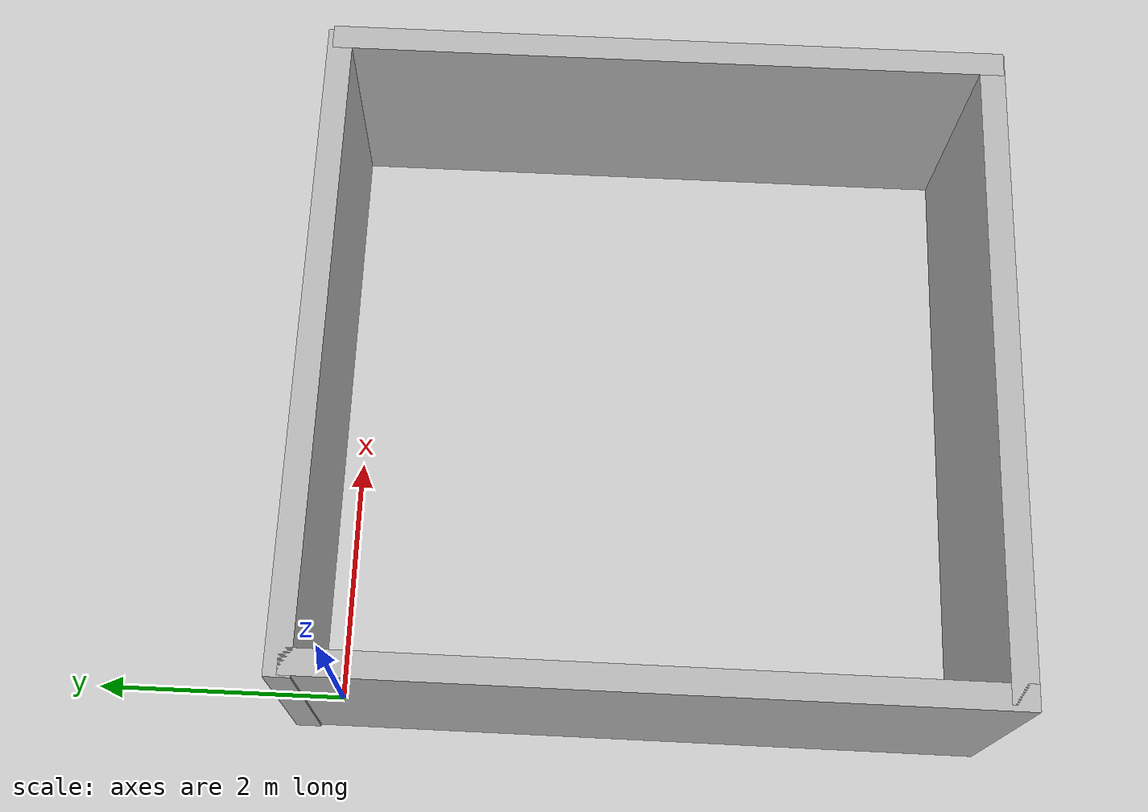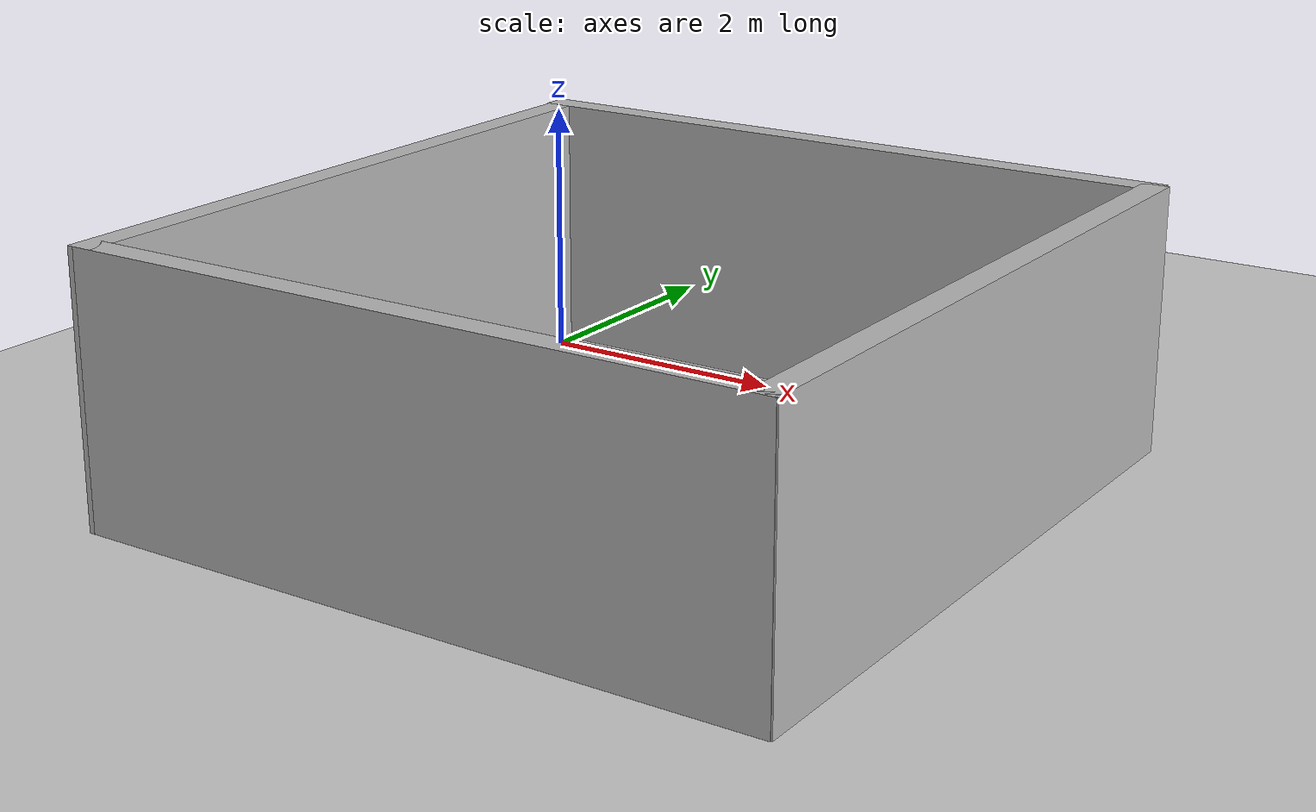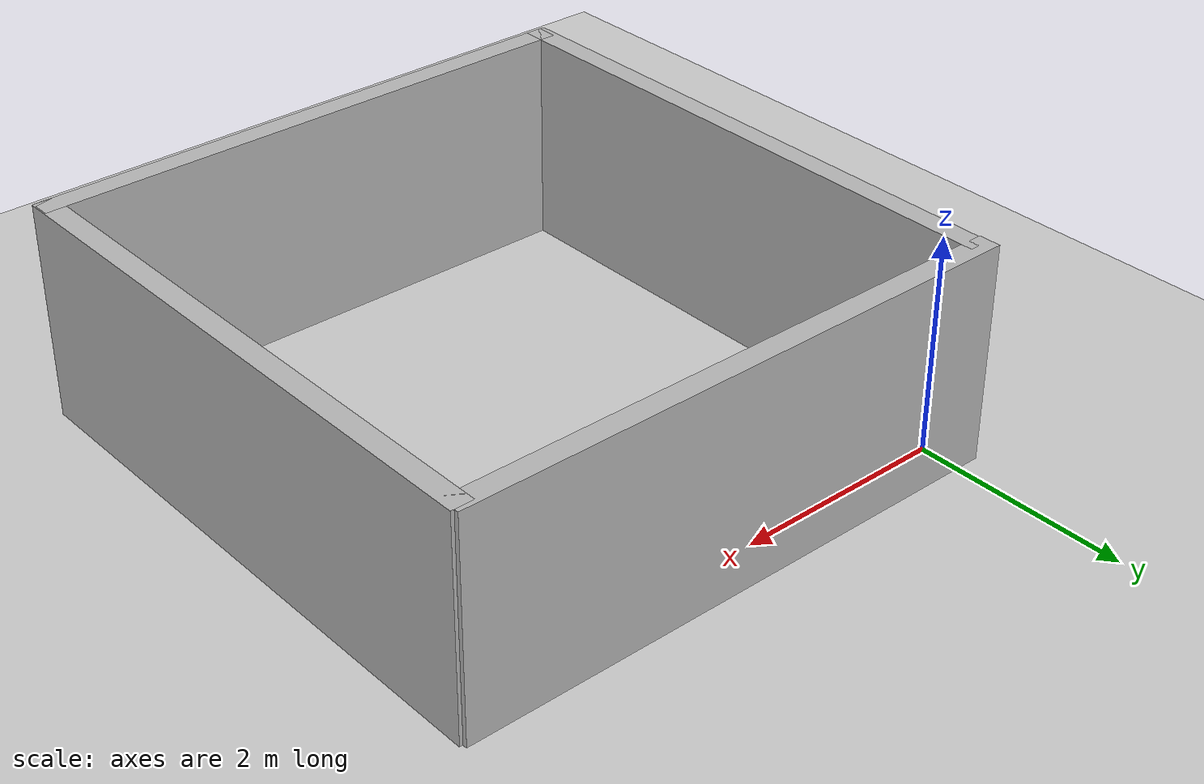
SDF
<sdf version="1.6">
 <world name="default">
  <physics name="default_physics" default="0" type="ode">
   <ode>
    <solver>
     <type>quick</type>
     <iters>20</iters>
     <sor>1</sor>
     <use_dynamic_moi_rescaling>0</use_dynamic_moi_rescaling>
    </solver>
    <constraints>
     <cfm>0</cfm>
     <erp>0.2</erp>
     <contact_max_correcting_vel>100</contact_max_correcting_vel>
     <contact_surface_layer>0</contact_surface_layer>
    </constraints>
   </ode>
   <real_time_update_rate>1000</real_time_update_rate>
   <max_step_size>0.001</max_step_size>
   <real_time_factor>1</real_time_factor>
  </physics>
  <light name="sun" type="directional">
   <pose>0 0 10 0 -0 0</pose>
   <diffuse>0.8 0.8 0.8 1</diffuse>
   <specular>0.2 0.2 0.2 1</specular>
   <attenuation>
    <range>1000</range>
    <constant>0.9</constant>
    <linear>0.01</linear>
    <quadratic>0.001</quadratic>
   </attenuation>
   <direction>-0.5 0.1 -0.9</direction>
  </light>
  <model name="ground_plane">
   <static>1</static>
   <link name="link">
    <collision name="collision">
     <geometry><plane><normal>0 0 1</normal><size>100 100</size></plane></geometry>
     <surface>
      <contact><collide_bitmask>65535</collide_bitmask></contact>
      <friction><ode><mu>100</mu><mu2>50</mu2></ode></friction>
     </surface>
    </collision>
    <visual name="visual">
     <cast_shadows>0</cast_shadows>
     <geometry><plane><normal>0 0 1</normal><size>100 100</size></plane></geometry>
     <material>
      <script><uri>file://media/materials/scripts/gazebo.material</uri><name>Gazebo/Grey</name></script>
     </material>
    </visual>
   </link>
  </model>
  <model name="wall_1_model">
   <pose>2.45815 -5 1 0 -0 0</pose>
   <static>1</static>
   <link name="wall_1_body">
    <inertial>
     <mass>1</mass>
     <inertia><ixx>1</ixx><ixy>0</ixy><ixz>0</ixz><iyy>1</iyy><iyz>0</iyz><izz>1</izz></inertia>
    </inertial>
    <collision name="collision"><geometry><box><size>5.26064 0.2 2</size></box></geometry></collision>
    <visual name="visual"><geometry><box><size>5.26064 0.2 2</size></box></geometry></visual>
   </link>
  </model>
  <model name="wall_2_model">
   <pose>2.41878 0.264338 1 0 -0 0</pose>
   <static>1</static>
   <link name="wall_2_body">
    <inertial>
     <mass>1</mass>
     <inertia><ixx>1</ixx><ixy>0</ixy><ixz>0</ixz><iyy>1</iyy><iyz>0</iyz><izz>1</izz></inertia>
    </inertial>
    <collision name="collision"><geometry><box><size>5.30103 0.2 2</size></box></geometry></collision>
    <visual name="visual"><geometry><box><size>5.30103 0.2 2</size></box></geometry></visual>
   </link>
  </model>
  <model name="wall_3_model">
   <pose>-0.116944 -2.41773 1 0 -0 0</pose>
   <static>1</static>
   <link name="wall_3_body">
    <inertial>
     <mass>1</mass>
     <inertia><ixx>1</ixx><ixy>0</ixy><ixz>0</ixz><iyy>1</iyy><iyz>0</iyz><izz>1</izz></inertia>
    </inertial>
    <collision name="collision"><geometry><box><size>0.2 5.36423 2</size></box></geometry></collision>
    <visual name="visual"><geometry><box><size>0.2 5.36423 2</size></box></geometry></visual>
   </link>
  </model>
  <model name="wall_4_model">
   <pose>5 -2.38486 1 0 -0 0</pose>
   <static>1</static>
   <link name="wall_4_body">
    <inertial>
     <mass>1</mass>
     <inertia><ixx>1</ixx><ixy>0</ixy><ixz>0</ixz><iyy>1</iyy><iyz>0</iyz><izz>1</izz></inertia>
    </inertial>
    <collision name="collision"><geometry><box><size>0.2 5.41788 2</size></box></geometry></collision>
    <visual name="visual"><geometry><box><size>0.2 5.41788 2</size></box></geometry></visual>
   </link>
  </model>
  <gravity>0 0 -9.81</gravity>
  <magnetic_field>6e-06 2.3e-05 -4.2e-05</magnetic_field>
  <atmosphere type="adiabatic"/>
  <scene><ambient>0.4 0.4 0.4 1</ambient><background>0.7 0.7 0.7 1</background><shadows>1</shadows></scene>
  <audio><device>default</device></audio>
  <spherical_coordinates>
   <surface_model>EARTH_WGS84</surface_model>
   <latitude_deg>0</latitude_deg>
   <longitude_deg>0</longitude_deg>
   <elevation>0</elevation>
   <heading_deg>0</heading_deg>
  </spherical_coordinates>
 </world>
</sdf>
